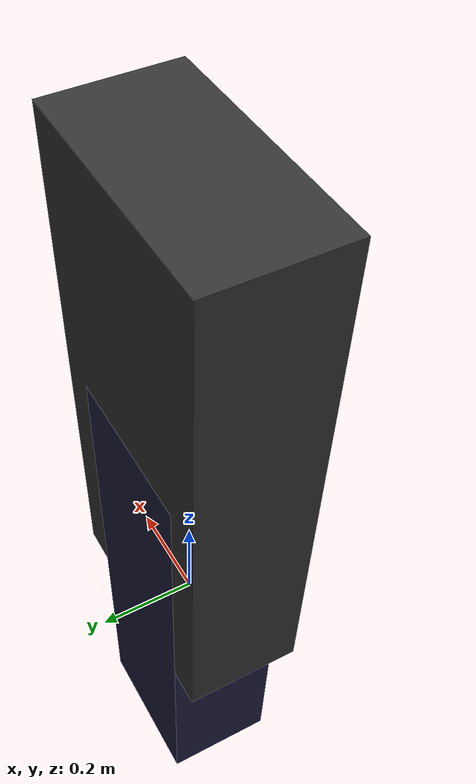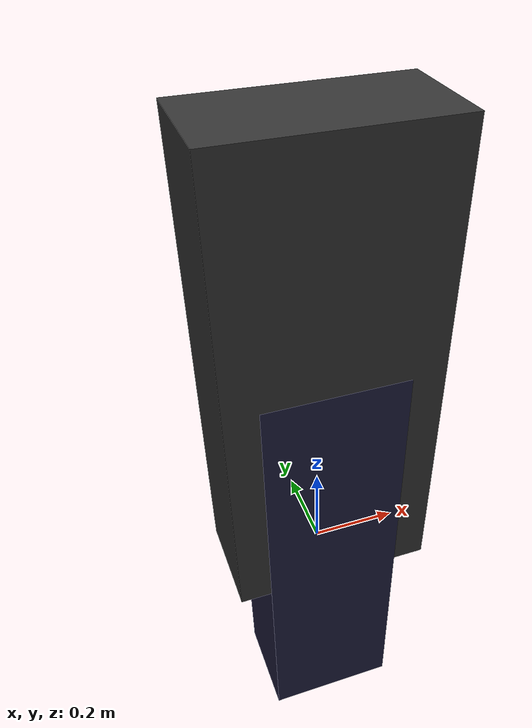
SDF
<sdf version="1.6">
  <model name="GeneratedRobot">
    <static>false</static>

    <!-- Base Link -->
    <link name="base_link">
      <visual name="base_visual">
        <pose>0 0 0.5 0 0 0</pose>
        <geometry>
          <box>
            <size>0.46796655054122455 0.2399913173327918 1.0514391556143112</size>
          </box>
        </geometry>
        <material>
          <ambient>0.2 0.2 0.2 1</ambient>
          <diffuse>0.2 0.2 0.2 1</diffuse>
          <specular>0.2 0.2 0.2 1</specular>
        </material>
      </visual>
      <collision name="base_collision">
        <pose>0 0 0.5 0 0 0</pose>
        <geometry>
          <box>
            <size>0.46796655054122455 0.2399913173327918 1.0514391556143112</size>
          </box>
        </geometry>
      </collision>
      <inertial>
        <pose>0 0 0.5 0 0 0</pose>
        <mass>10</mass>
        <inertia>
          <ixx>0.1</ixx>
          <ixy>0</ixy>
          <ixz>0</ixz>
          <iyy>0.1</iyy>
          <iyz>0</iyz>
          <izz>0.1</izz>
        </inertia>
      </inertial>
    </link>

    <!-- Arm1 -->
    <link name="arm1">
      <visual name="arm1_visual">
        <pose>0 0 0 0 0 0</pose>
        <geometry>
          <box>
            <size>0.05 0.05 0.5</size>
          </box>
        </geometry>
        <material>
          <ambient>0.5 0.5 0.5 1</ambient>
          <diffuse>0.5 0.5 0.5 1</diffuse>
          <specular>0.5 0.5 0.5 1</specular>
        </material>
      </visual>
      <collision name="arm1_collision">
        <pose>0 0 0 0 0 0</pose>
        <geometry>
          <box>
            <size>0.05 0.05 0.5</size>
          </box>
        </geometry>
      </collision>
      <inertial>
        <pose>0 0 0 0 0 0</pose>
        <mass>1.0</mass> <!-- Increased mass -->
        <inertia>
          <ixx>0.001</ixx> <!-- Increased inertia values -->
          <ixy>0</ixy>
          <ixz>0</ixz>
          <iyy>0.001</iyy>
          <iyz>0</iyz>
          <izz>0.001</izz>
        </inertia>
      </inertial>
    </link>

    <!-- Arm2 -->
    <link name="arm2">
      <visual name="arm2_visual">
        <pose>0 0 0 0 0 0</pose>
        <geometry>
          <box>
            <size>0.05 0.05 0.5</size>
          </box>
        </geometry>
      </visual>
      <collision name="arm2_collision">
        <pose>0 0 0 0 0 0</pose>
        <geometry>
          <box>
            <size>0.05 0.05 0.5</size>
          </box>
        </geometry>
      </collision>
      <inertial>
        <pose>0 0 0 0 0 0</pose>
        <mass>1.0</mass> <!-- Increased mass -->
        <inertia>
          <ixx>0.001</ixx> <!-- Increased inertia values -->
          <ixy>0</ixy>
          <ixz>0</ixz>
          <iyy>0.001</iyy>
          <iyz>0</iyz>
          <izz>0.001</izz>
        </inertia>
      </inertial>
    </link>

    <!-- Cube2 -->
    <link name="cube2">
      <visual name="cube2_visual">
        <pose>0 0 0 0 0 0</pose>
        <geometry>
          <box>
            <size>0.32 0.24 1.05</size>
          </box>
        </geometry>
        <material>
          <ambient>0.11443537381770343 0.11193242782769693 0.23455058215026167 1</ambient>
          <diffuse>0.11443537381770343 0.11193242782769693 0.23455058215026167 1</diffuse>
          <specular>0.11443537381770343 0.11193242782769693 0.23455058215026167 1</specular>
        </material>
      </visual>
      <collision name="cube2_collision">
        <pose>0 0 0 0 0 0</pose>
        <geometry>
          <box>
            <size>0.32 0.24 1.05</size>
          </box>
        </geometry>
      </collision>
      <inertial>
        <pose>0 0 0 0 0 0</pose>
        <mass>10</mass>
        <inertia>
          <ixx>0.1</ixx>
          <ixy>0</ixy>
          <ixz>0</ixz>
          <iyy>0.1</iyy>
          <iyz>0</iyz>
          <izz>0.1</izz>
        </inertia>
      </inertial>
    </link>

    <!-- Cube3 -->
    <link name="cube3">
      <visual name="cube3_visual">
        <pose>0 0 0 0 0 0</pose>
        <geometry>
          <box>
            <size>0.32 0.24 1.05</size>
          </box>
        </geometry>
        <material>
          <ambient>0.026241221889696346 0.13286832154414627 0.4019777798219466 1</ambient>
          <diffuse>0.026241221889696346 0.13286832154414627 0.4019777798219466 1</diffuse>
          <specular>0.026241221889696346 0.13286832154414627 0.4019777798219466 1</specular>
        </material>
      </visual>
      <collision name="cube3_collision">
        <pose>0 0 0 0 0 0</pose>
        <geometry>
          <box>
            <size>0.32 0.24 1.05</size>
          </box>
        </geometry>
      </collision>
      <inertial>
        <pose>0 0 0 0 0 0</pose>
        <mass>10</mass>
        <inertia>
          <ixx>0.1</ixx>
          <ixy>0</ixy>
          <ixz>0</ixz>
          <iyy>0.1</iyy>
          <iyz>0</iyz>
          <izz>0.1</izz>
        </inertia>
      </inertial>
    </link>

    <!-- Joints -->
    <joint name="base_link_to_arm1" type="prismatic">
      <parent>base_link</parent>
      <child>arm1</child>
      <pose>0.234 0 0.5 0 0 0</pose>
      <axis>
        <xyz>0 0 1</xyz>
      </axis>
      <limit>
        <effort>1000.0</effort>
        <lower>0.0</lower>
        <upper>0.5</upper>
        <velocity>0.2</velocity> <!-- Reduced velocity -->
      </limit>
    </joint>

    <joint name="arm1_to_cube2" type="revolute">
      <parent>arm1</parent>
      <child>cube2</child>
      <pose>0.185 0 0 0 0 0</pose>
      <axis>
        <xyz>1 0 0</xyz>
      </axis>
      <limit>
        <effort>10.0</effort>
        <lower>-1.57</lower>
        <upper>1.57</upper>
        <velocity>5</velocity> <!-- Reduced velocity -->
      </limit>
    </joint>

    <joint name="base_link_to_arm2" type="prismatic">
      <parent>base_link</parent>
      <child>arm2</child>
      <pose>-0.234 0 0.5 0 0 0</pose>
      <axis>
        <xyz>0 0 1</xyz>
      </axis>
      <limit>
        <effort>1000.0</effort>
        <lower>0.0</lower>
        <upper>0.5</upper>
        <velocity>0.2</velocity> <!-- Reduced velocity -->
      </limit>
    </joint>

    <joint name="arm2_to_cube3" type="revolute">
      <parent>arm2</parent>
      <child>cube3</child>
      <pose>-0.185 0 0 0 0 0</pose>
      <axis>
        <xyz>1 0 0</xyz>
      </axis>
      <limit>
        <effort>10.0</effort>
        <lower>-1.57</lower>
        <upper>1.57</upper>
        <velocity>5</velocity> <!-- Reduced velocity -->
      </limit>
    </joint>

    <!-- Plugin -->
    <plugin name="diff_drive" filename="libgazebo_ros_diff_drive.so">
      <robotNamespace>/</robotNamespace>
      <leftJoint>base_link_to_arm1</leftJoint>
      <rightJoint>base_link_to_arm2</rightJoint>
      <wheelSeparation>1.0</wheelSeparation>
      <wheelDiameter>0.2</wheelDiameter>
      <maxTorque>5.0</maxTorque>
    </plugin>

  </model>
</sdf>
